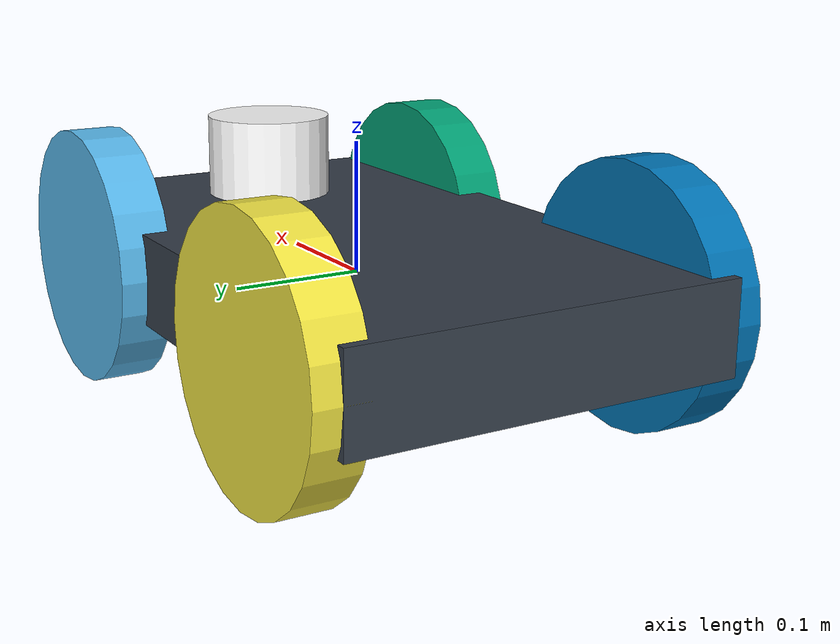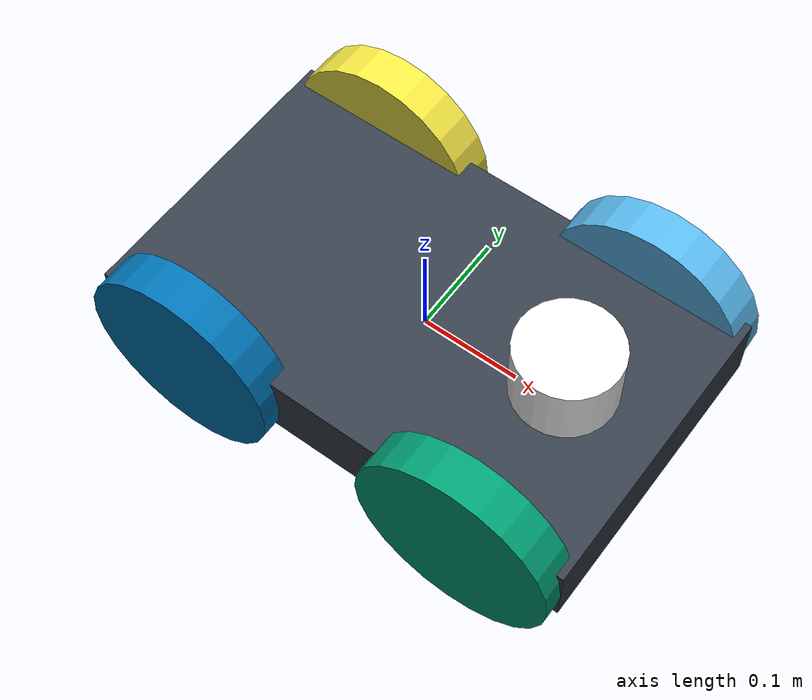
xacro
<?xml version="1.0" ?>
<robot name="robot2roda" xmlns:xacro="https://www.ros.org/wiki/xacro" >

  <!-- include the xacro files-->
  <xacro:include filename="$(find tugas_kelompok)/urdf/materials.xacro" />
  <xacro:include filename="$(find tugas_kelompok)/urdf/gazebo.xacro" />
  <xacro:include filename="$(find tugas_kelompok)/urdf/macro.xacro" />

  <!-- Chasis defined here -->
  <link name="link_chassis">
    <pose>0 0 0.1 0 0 0</pose>
    <inertial>
      <mass value="5"/>
      <origin rpy="0 0 0" xyz="0 0 0.1"/>
      <inertia ixx="0.0395416666667" ixy="0" ixz="0" iyy="0.106208333333" iyz="0" izz="0.106208333333"/>
    </inertial>

    <collision name="collision_chassis">
      <geometry>
        <box size="0.5 0.3 0.07"/>
      </geometry>
    </collision>

    <visual>
      <origin rpy="0 0 0" xyz="0 0 0"/>
      <geometry>
        <box size="0.5 0.3 0.07"/>
      </geometry>
      <material name="blue"/>
    </visual>

    <!-- caster front -->
    </link>

<!-- Create front right wheel -->
  <link name="front_link_right_wheel">
    <inertial>
      <mass value="0.2"/>
      <origin rpy="0 1.5707 1.5707" xyz="0 0 0"/>
      <inertia ixx="0.00052666666" ixy="0" ixz="0" iyy="0.00052666666" iyz="0" izz="0.001"/>
    </inertial>

    <collision name="link_right_wheel_collision">
      <origin rpy="0 1.5707 1.5707" xyz="0 0 0" />
      <geometry>
        <cylinder length="0.04" radius="0.1"/>
      </geometry>
    </collision>

    <visual name="link_right_wheel_visual">
      <origin rpy="0 1.5707 1.5707" xyz="0 0 0"/>
      <geometry>
        <cylinder length="0.04" radius="0.1"/>
      </geometry>
    </visual>

  </link>

  <!--   Joint for right wheel  -->
  <joint name="front_joint_right_wheel" type="continuous">
    <origin rpy="0 0 0" xyz="0.15 0.15 0"/>
    <child link="front_link_right_wheel" />
    <parent link="link_chassis"/>
    <axis rpy="0 0 0" xyz="0 1 0"/>
    <limit effort="10000" velocity="1000"/>
    <joint_properties damping="1.0" friction="1.0" />
  </joint>

<!-- Create front Left wheel -->

<link name="front_link_left_wheel">
    <inertial>
      <mass value="0.2"/>
      <origin rpy="0 1.5707 1.5707" xyz="0 0 0"/>
      <inertia ixx="0.00052666666" ixy="0" ixz="0" iyy="0.00052666666" iyz="0" izz="0.001"/>
    </inertial>

    <collision name="link_left_wheel_collision">
      <origin rpy="0 1.5707 1.5707" xyz="0 0 0" />
      <geometry>
        <cylinder length="0.04" radius="0.1"/>
      </geometry>
    </collision>

    <visual name="link_left_wheel_visual">
      <origin rpy="0 1.5707 1.5707" xyz="0 0 0"/>
      <geometry>
        <cylinder length="0.04" radius="0.1"/>
      </geometry>
    </visual>

  </link>

<joint name="joint_left_wheel" type="continuous">
    <origin rpy="0 0 0" xyz="0.15 -0.15 0"/>
    <child link="front_link_left_wheel" />
    <parent link="link_chassis"/>
    <axis rpy="0 0 0" xyz="0 1 0"/>
    <limit effort="10000" velocity="1000"/>
    <joint_properties damping="1.0" friction="1.0" />
  </joint>

  <!-- Create wheel right -->

   <xacro:link_wheel name="back_link_right_wheel" />
   <xacro:joint_wheel name="back_joint_right_wheel"  child="back_link_right_wheel"  origin_xyz="-0.15 0.15 0"  />

  <!-- Left Wheel link -->

  <xacro:link_wheel name="back_link_left_wheel" />
  <xacro:joint_wheel name="back_joint_left_wheel"   child="back_link_left_wheel"   origin_xyz="-0.15 -0.15 0"  />

	<link name="sensor_laser">
    <inertial>
      <origin xyz="0 0 0" rpy="0 0 0" />
      <mass value="1" />
      <!-- RANDOM INERTIA BELOW -->
      <inertia ixx="0.02" ixy="0" ixz="0" iyy="0.02" iyz="0" izz="0.02"/>
    </inertial>

    <visual>
      <origin xyz="0 0 0" rpy="0 0 0" />
      <geometry>
        <cylinder radius="0.05" length="0.1"/>
      </geometry>
      <material name="white" />
    </visual>

    <collision>
      <origin xyz="0 0 0" rpy="0 0 0"/>
      <geometry>
        <cylinder radius="0.05" length="0.1"/>
      </geometry>
    </collision>
  </link>

  <joint name="joint_sensor_laser" type="fixed">
    <origin xyz="0.15 0 0.05" rpy="0 0 0"/>
    <parent link="link_chassis"/>
    <child link="sensor_laser"/>
  </joint>

</robot>

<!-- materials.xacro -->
<robot name="robot2roda" xmlns:xacro="https://www.ros.org/wiki/xacro" >
  <material name="black">
    <color rgba="0.0 0.0 0.0 1.0"/>
  </material>
  <material name="blue">
    <color rgba="0.203125 0.23828125 0.28515625 1.0"/>
  </material>
  <material name="green">
    <color rgba="0.0 0.8 0.0 1.0"/>
  </material>
  <material name="grey">
    <color rgba="0.2 0.2 0.2 1.0"/>
  </material>
  <material name="orange">
    <color rgba="1.0 0.423529411765 0.0392156862745 1.0"/>
  </material>
  <material name="brown">
    <color rgba="0.870588235294 0.811764705882 0.764705882353 1.0"/>
  </material>
  <material name="red">
    <color rgba="0.80078125 0.12890625 0.1328125 1.0"/>
  </material>
  <material name="white">
    <color rgba="1.0 1.0 1.0 1.0"/>
  </material>
</robot>

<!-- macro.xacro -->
<robot xmlns:xacro="http://www.ros.org/wiki/xacro">
    <xacro:macro name="link_wheel" params="name">
        <link name="${name}">
            <inertial>
              <mass value="0.2"/>
              <origin rpy="0 1.5707 1.5707" xyz="0 0 0"/>
              <inertia ixx="0.000526666666667" ixy="0" ixz="0" iyy="0.000526666666667" iyz="0" izz="0.001"/>
            </inertial>
            <collision name="link_right_wheel_collision">
              <origin rpy="0 1.5707 1.5707" xyz="0 0 0"/>
              <geometry>
                <cylinder length="0.04" radius="0.1"/>
              </geometry>
            </collision>
            <visual name="${name}_visual">
              <origin rpy="0 1.5707 1.5707" xyz="0 0 0"/>
              <geometry>
                <cylinder length="0.04" radius="0.1"/>
              </geometry>
            </visual>
        </link>
    </xacro:macro>

    <xacro:macro name="joint_wheel" params="name child origin_xyz">
      <joint name="${name}" type="fixed">
        <origin rpy="0 0 0" xyz="${origin_xyz}"/>
        <child link="${child}"/>
        <parent link="link_chassis"/>
        <axis rpy="0 0 0" xyz="0 1 0"/>
        <limit effort="10000" velocity="1000"/>
        <joint_properties damping="1.0" friction="1.0"/>
      </joint>
    </xacro:macro>

	<xacro:macro name="cylinder_inertia" params="mass r l">
    		<inertia ixx="${mass*(3*r*r+l*l)/12}" ixy = "0" ixz = "0"
               	 iyy="${mass*(3*r*r+l*l)/12}" iyz = "0" izz="${mass*(r*r)/2}" />
	</xacro:macro>

	<xacro:cylinder_inertia mass="1" r="0.05" l="0.1" />

</robot>
